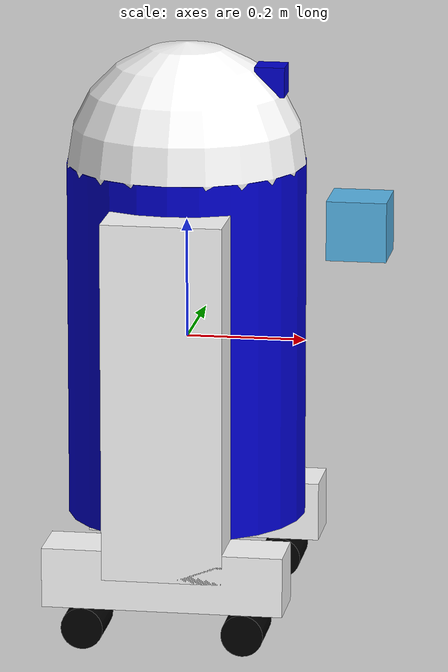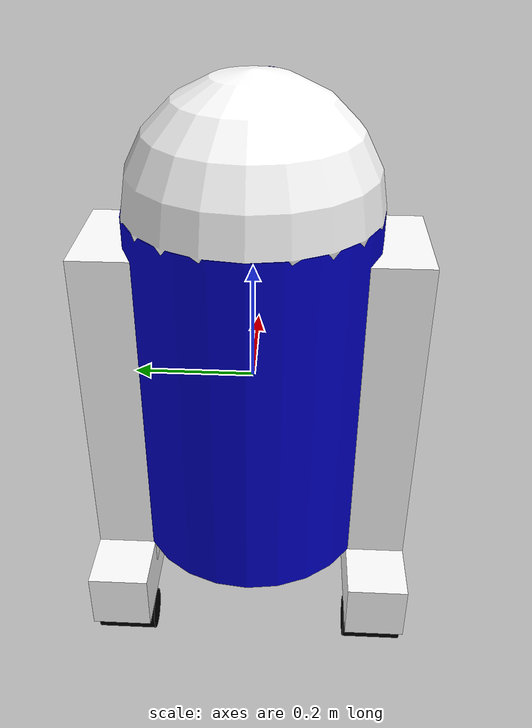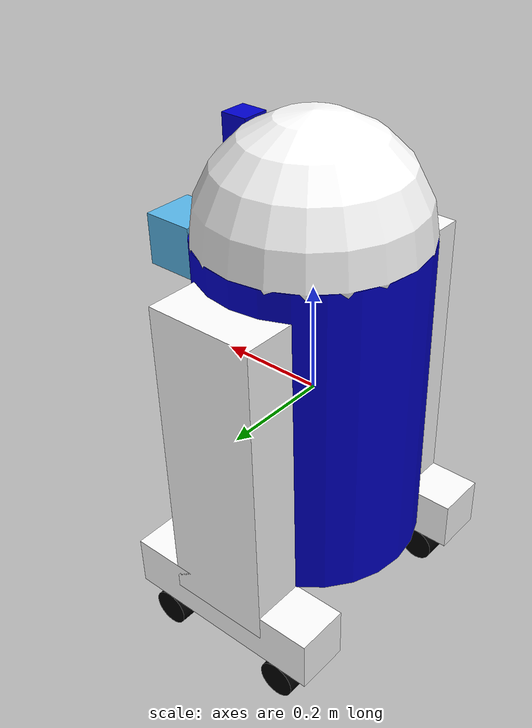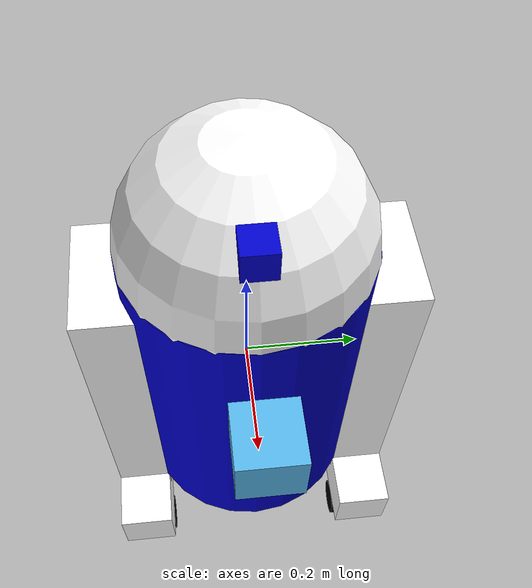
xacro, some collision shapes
<?xml version="1.0"?>
<robot name="macroed" xmlns:xacro="http://ros.org/wiki/xacro">

  <xacro:property name="width" value="0.2" />
  <xacro:property name="leglen" value="0.6" />
  <xacro:property name="polelen" value="0.2" />
  <xacro:property name="bodylen" value="0.6" />
  <xacro:property name="baselen" value="0.4" />
  <xacro:property name="wheeldiam" value="0.07" />
  <xacro:property name="pi" value="3.1415" />
  <xacro:property name="camera_link" value="0.05" />

  <material name="blue">
    <color rgba="0 0 0.8 1"/>
  </material>

  <material name="black">
    <color rgba="0 0 0 1"/>
  </material>

  <material name="white">
    <color rgba="1 1 1 1"/>
  </material>

  <xacro:macro name="default_inertial" params="mass">
    <inertial>
      <mass value="${mass}" />
      <inertia ixx="1.0" ixy="0.0" ixz="0.0" iyy="1.0" iyz="0.0" izz="1.0" />
    </inertial>
  </xacro:macro>

  <link name="base_link">
    <visual>
      <geometry>
        <cylinder radius="${width}" length="${bodylen}"/>
      </geometry>
      <material name="blue"/>
    </visual>
    <collision>
      <geometry>
        <cylinder radius="${width}" length="${bodylen}"/>
      </geometry>
    </collision>
    <xacro:default_inertial mass="10"/>
  </link>

  <xacro:macro name="wheel" params="prefix suffix reflect">

    <link name="${prefix}_${suffix}_wheel">
      <visual>
	<kp>1000000.0</kp> <!-- kp and kd for rubber -->
	<kd>100.0</kd>
	<mu1>1.0</mu1>
	<mu2>1.0</mu2>
	<maxVel>1.0</maxVel>
	<minDepth>0.00</minDepth>
        <origin xyz="0 0 0" rpy="${pi/2} 0 0" />
        <geometry>
          <cylinder radius="${wheeldiam/2}" length="0.1"/>
        </geometry>
        <material name="black"/>
      </visual>
      <collision>
        <origin xyz="0 0 0" rpy="${pi/2} 0 0" />
        <geometry>
          <cylinder radius="${wheeldiam/2}" length="0.1"/>
        </geometry>
      </collision>
      <xacro:default_inertial mass="1"/>
    </link>
    <joint name="${prefix}_${suffix}_wheel_joint" type="continuous">
      <axis xyz="0 1 0" rpy="0 0 0" />
      <parent link="${prefix}_base"/>
      <child link="${prefix}_${suffix}_wheel"/>
      <origin xyz="${baselen*reflect/3} 0 -${wheeldiam/2+.05}" rpy="0 0 0"/>
    </joint>

  </xacro:macro>

  <xacro:macro name="leg" params="prefix reflect">
    <link name="${prefix}_leg">
      <visual>
        <geometry>
          <box size="${leglen} 0.1 0.2"/>
        </geometry>
        <origin xyz="0 0 -${leglen/2}" rpy="0 ${pi/2} 0"/>
        <material name="white"/>
      </visual>
      <collision>
        <geometry>
          <box size="${leglen} 0.1 0.2"/>
        </geometry>
        <origin xyz="0 0 -${leglen/2}" rpy="0 ${pi/2} 0"/>
      </collision>
      <xacro:default_inertial mass="10"/>
    </link>

    <joint name="base_to_${prefix}_leg" type="fixed">
      <parent link="base_link"/>
      <child link="${prefix}_leg"/>
      <origin xyz="0 ${reflect*(width+.02)} 0.25" />
    </joint>

    <link name="${prefix}_base">
      <visual>
        <geometry>
          <box size="${baselen} 0.1 0.1"/>
        </geometry>
        <material name="white"/>
      </visual>
      <collision>
        <geometry>
          <box size="${baselen} 0.1 0.1"/>
        </geometry>
      </collision>
      <xacro:default_inertial mass="10"/>
    </link>

    <joint name="${prefix}_base_joint" type="fixed">
      <parent link="${prefix}_leg"/>
      <child link="${prefix}_base"/>
      <origin xyz="0 0 ${-leglen}" />
    </joint>
    <xacro:wheel prefix="${prefix}" suffix="front" reflect="1"/>
    <xacro:wheel prefix="${prefix}" suffix="back" reflect="-1"/>
  </xacro:macro>
  <xacro:leg prefix="right" reflect="-1" />
  <xacro:leg prefix="left" reflect="1" />

  <joint name="hokuyo_joint" type="fixed">
    <axis xyz="0 0 0"/>
     <origin rpy="0 0 0" xyz="${width-.01} 0 0.2"/>
    <parent link="base_link"/>
    <child link="hokuyo_link"/>
  </joint>

  <link name="hokuyo_link">
    <collision>
      <origin xyz="${polelen/2} 0 0" rpy="0 ${pi/2} 0 "/>
      <geometry>
    <box size="0.1 0.1 0.1"/>
      </geometry>
    </collision>

    <visual>
     <origin xyz="${polelen/2} 0 0" rpy="0 ${pi/2} 0 "/>
      <geometry>
        <mesh filename="package://myRobot_description/meshes/hokuyo.dae"/>
      </geometry>
    </visual>
   <inertial>
      <mass value="1e-5" />
      <origin xyz="0 0 0" rpy="0 0 0"/>
      <inertia ixx="1e-6" ixy="0" ixz="0" iyy="1e-6" iyz="0" izz="1e-6" />
    </inertial>
  </link>

<gazebo reference="hokuyo_link">
    <sensor type="gpu_ray" name="head_hokuyo_sensor">
      <pose>0 0 0 0 0 0</pose>
      <visualize>false</visualize>
      <update_rate>40</update_rate>
      <ray>
        <scan>
          <horizontal>
            <samples>720</samples>
            <resolution>1</resolution>
            <min_angle>-1.570796</min_angle>
            <max_angle>1.570796</max_angle>
          </horizontal>
        </scan>
        <range>
          <min>0.10</min>
          <max>30.0</max>
          <resolution>0.01</resolution>
        </range>
        <noise>
          <type>gaussian</type>
          <mean>0.0</mean>
          <stddev>0.01</stddev>
        </noise>
      </ray>
      <plugin name="gazebo_ros_head_hokuyo_controller" filename="libgazebo_ros_gpu_laser.so">
        <topicName>/model/laser/scan</topicName>
        <frameName>hokuyo_link</frameName>
      </plugin>
    </sensor>
  </gazebo>

  <link name="head">
    <visual>
      <geometry>
        <sphere radius="${width}"/>
      </geometry>
      <material name="white"/>
    </visual>
    <collision>
      <geometry>
        <sphere radius="${width}"/>
      </geometry>
    </collision>
    <xacro:default_inertial mass="2"/>
  </link>

  <joint name="head_swivel" type="continuous">
    <parent link="base_link"/>
    <child link="head"/>
    <axis xyz="0 0 1"/>
    <origin xyz="0 0 ${bodylen/2}"/>
  </joint>

  <link name="camera_link">
    <visual>
      <geometry>
        <box size="${camera_link} ${camera_link} ${camera_link}"/>
      </geometry>
      <material name="blue"/>
      <origin xyz="-0.04 0 0"/>
    </visual>
    <collision>
      <geometry>
        <box size="${camera_link} ${camera_link} ${camera_link}"/>
      </geometry>
    </collision>
    <xacro:default_inertial mass="1"/>
  </link>

  <joint name="tobox" type="fixed">
    <parent link="head"/>
    <child link="camera_link"/>
    <origin xyz="${.707*width+0.04} 0 ${.707*width}"/>
  </joint>

  <gazebo reference="camera_link">
    <sensor type="camera" name="camera1">
      <update_rate>30.0</update_rate>
      <camera name="camera1">
        <horizontal_fov>1.3962634</horizontal_fov>
        <image>
          <width>800</width>
          <height>800</height>
          <format>R8G8B8</format>
        </image>
        <clip>
          <near>0.02</near>
          <far>300</far>
        </clip>
        <noise>
          <type>gaussian</type>
          <!-- Noise is sampled independently per pixel on each frame.
               That pixel's noise value is added to each of its color
               channels, which at that point lie in the range [0,1]. -->
          <mean>0.0</mean>
          <stddev>0.007</stddev>
        </noise>
      </camera>
      <plugin name="camera_controller" filename="libgazebo_ros_camera.so">
        <alwaysOn>true</alwaysOn>
        <updateRate>0.0</updateRate>
        <cameraName>model/camera1</cameraName>
        <imageTopicName>image_raw</imageTopicName>
        <cameraInfoTopicName>camera_info</cameraInfoTopicName>
        <frameName>camera_link</frameName>
        <hackBaseline>0.07</hackBaseline>
        <distortionK1>0.0</distortionK1>
        <distortionK2>0.0</distortionK2>
        <distortionK3>0.0</distortionK3>
        <distortionT1>0.0</distortionT1>
        <distortionT2>0.0</distortionT2>
      </plugin>
    </sensor>
  </gazebo>

<gazebo>
  <plugin name="skid_steer_drive_controller" filename="libgazebo_ros_skid_steer_drive.so">
    <updateRate>100.0</updateRate>
    <robotNamespace>/</robotNamespace>
    <leftFrontJoint>left_front_wheel_joint</leftFrontJoint>
    <rightFrontJoint>right_front_wheel_joint</rightFrontJoint>
    <leftRearJoint>left_back_wheel_joint</leftRearJoint>
    <rightRearJoint>right_back_wheel_joint</rightRearJoint>
    <wheelSeparation>0.2</wheelSeparation>
    <wheelDiameter>0.07</wheelDiameter>
    <robotBaseFrame>base_link</robotBaseFrame>
    <torque>20</torque>
    <topicName>cmd_vel</topicName>
    <broadcastTF>true</broadcastTF>
  </plugin>

</gazebo>

</robot>
